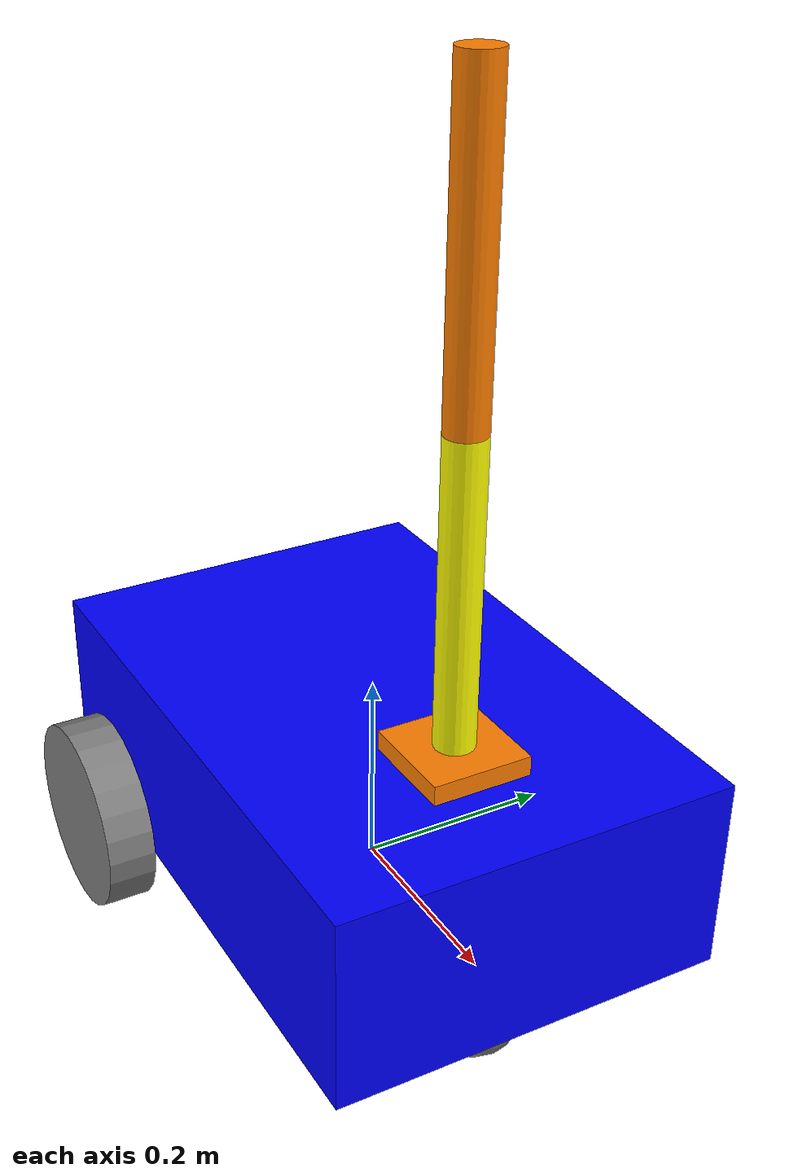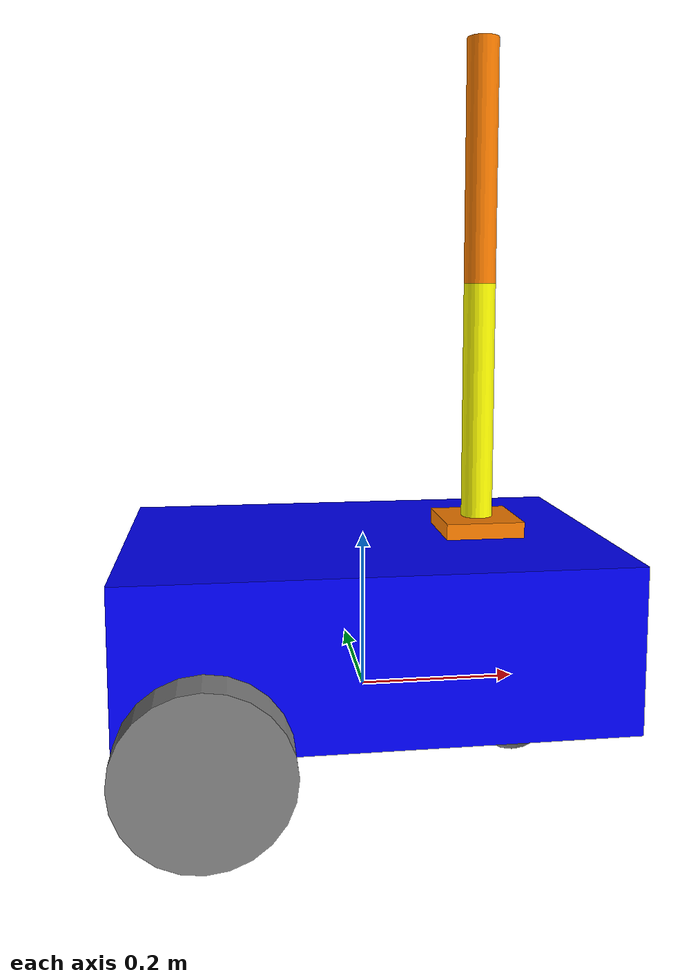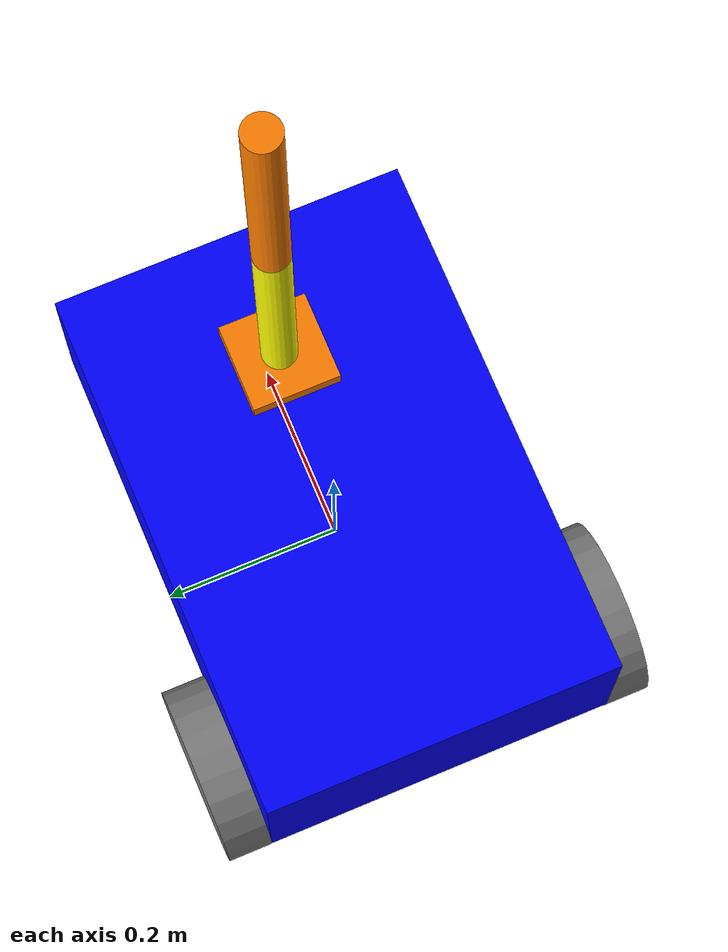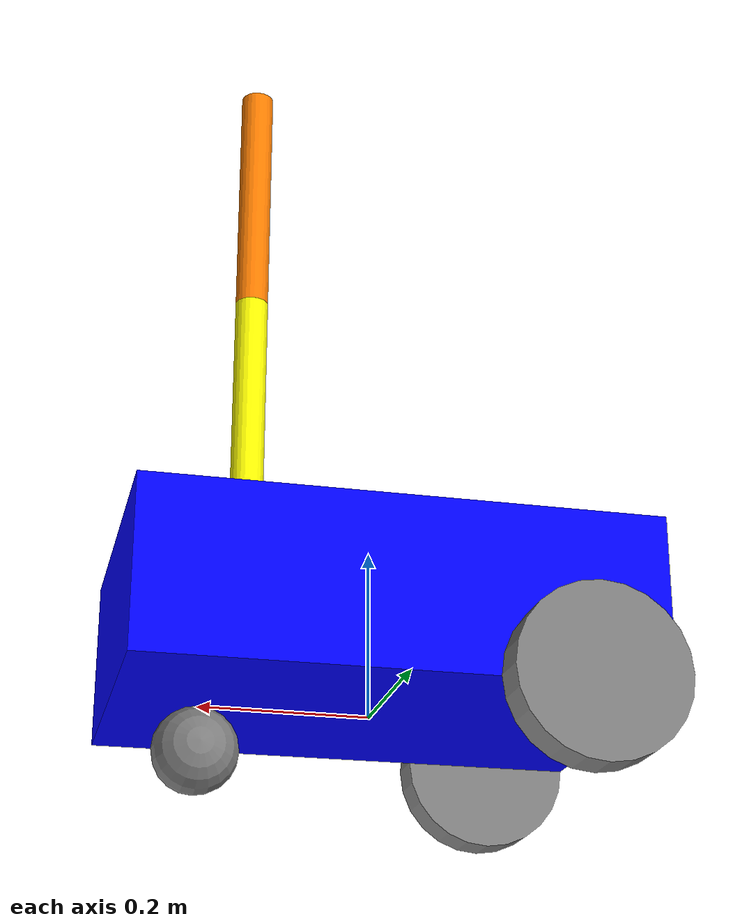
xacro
<?xml version="1.0"?>
<robot name="my_robot" xmlns:xacro="http://www.ros.org/wiki/xacro">

    <!-- is the main project file that includes other files -->

    <xacro:include filename="common_properties.xacro" />
    <xacro:include filename="mobile_base.xacro" />
    <xacro:include filename="mobile_base_ros2_control.xacro"/>
    <xacro:include filename="arm.xacro" />
    <xacro:include filename="arm_gazebo.xacro" />

    <joint name="mobile_base_arm_joint" type="fixed">
        <parent link="base_link" />
        <child link="arm_base_link" />
        <origin xyz="${base_length / 4.0} 0 ${base_height}" rpy="0 0 0" />
    </joint>

</robot>

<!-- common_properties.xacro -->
<!--we will not add name ot the robot since we will call this file inside main
xacro file -->

<robot xmlns:xacro = "http://www.ros.org/wiki/xacro">

    <material name= "blue">
        <color rgba= "0 0 1 1" />
    </material>

    <material name= "grey">
        <color rgba= "0.5 0.5 0.5 1" />
    </material>

    <material name= "orange">
        <color rgba= "1.0 0.5 0 1" />
    </material>

    <xacro:macro name= "box_inertia" params= "m l w h xyz rpy">
        <inertial>
            <origin xyz= "${xyz}" rpy= "${rpy}"/>
            <mass value= "${m}" />
            <inertia ixx="${(m/12) * (l*l + h*h)}" ixy="0" ixz="0"
                     iyy = "${(m/12) * (l*l + w*w)}" iyz="0"
                     izz="${(m/12) * (h*h + w*w)}" />
        </inertial>
    </xacro:macro>

    <xacro:macro name= "solid-cylinder_inertia" params= "m r h xyz rpy">
        <inertial>
            <origin xyz= "${xyz}" rpy= "${rpy}"/>
            <mass value= "${m}" />
            <inertia ixx="${(m/12) * (3*r*r + h*h)}" ixy="0" ixz="0"
                     iyy = "${(m/12) * (3*r*r + h*h)}" iyz="0"
                     izz="${(m/2) * (r*r)}" />
        </inertial>
    </xacro:macro>

    <xacro:macro name= "solid-sphere_inertia" params= "m r  xyz rpy">
        <inertial>
            <origin xyz= "${xyz}" rpy= "${rpy}"/>
            <mass value= "${m}" />
            <inertia ixx="${(2*m/5) * (r*r)}" ixy="0" ixz="0"
                     iyy = "${(2*m/5) * (r*r)}" iyz="0"
                     izz="${(2*m/5) * (r*r)}" />
        </inertial>
    </xacro:macro>

</robot>

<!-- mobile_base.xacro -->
<robot xmlns:xacro = "http://www.ros.org/wiki/xacro">

    <!-- making variables using "xacro:property" -->
    <xacro:property name="base_length" value="0.6" />
    <xacro:property name="base_width" value="0.4" />
    <xacro:property name="base_height" value="0.2" />
    <xacro:property name="wheel_radius" value="0.1" />
    <xacro:property name="wheel_length" value="0.05" />

    <link name="base_footprint"/>

    <link name="base_link">
      <visual>
        <geometry>
           <box size="${base_length} ${base_width} ${base_height}" />
        </geometry>
        <origin xyz="0 0 ${base_height/2.0}" rpy="0 0 0" />
        <material name="blue" />
      </visual>
      <collision>
        <geometry>
            <box size="${base_length} ${base_width} ${base_height}" />
        </geometry>
        <origin xyz="0 0 ${base_height/2.0}" rpy="0 0 0" />
      </collision>
      <xacro:box_inertia m="5.0" l="${2*base_length}" w="${2*base_width}"
      h="${2*base_height}" xyz="0 0 ${base_height/2.0}" rpy="0 0 0"/>
    </link>

    <joint name="base_footprint"  type="fixed">
        <parent link = "base_link" />
        <child link = "base_footprint" />
        <origin xyz="0 0 ${-base_height/2.0}" rpy="0 0 0" />
        <axis xyz="0 0 0" />
    </joint>

    <!-- making function for right and left wheels using "xacro:macro" -->
    <xacro:macro name = "wheel_link" params = "prefix" >

        <link name="${prefix}_wheel">
            <visual>
                <geometry>
                    <cylinder radius="${wheel_radius}" length="${wheel_length}" />
                </geometry>
                <origin xyz ="0 0 0" rpy="${pi/2.0} 0 0" />
                <material name="grey" />
            </visual>
            <collision>
                <geometry>
                    <cylinder radius="${wheel_radius}" length="${wheel_length}" />
                </geometry>
                <origin xyz ="0 0 0" rpy="${pi/2.0} 0 0" />
            </collision>
            <xacro:solid-cylinder_inertia m= "2.0" r= "${2*wheel_radius}"  h="${2*wheel_length}"
                         xyz="0 0 0" rpy="${pi/2.0} 0 0"/>
        </link>
    </xacro:macro>

    <!-- to make right wheel -->
    <xacro:wheel_link prefix = "right" />

    <!-- to make left wheel -->
    <xacro:wheel_link prefix = "left" />

    <joint name="base_right_wheel"  type="continuous">
        <parent link = "base_link" />
        <child link = "right_wheel" />
        <origin xyz="${-base_length/3.0} ${-base_width*0.5625} 0" rpy="0 0 0" />
        <axis xyz="0 1 0" />
    </joint>

    <joint name="base_left_wheel"  type="continuous">
        <parent link = "base_link" />
        <child link = "left_wheel" />
        <origin xyz="${-base_length/3.0} ${base_width*0.5625} 0" rpy="0 0 0" />
        <axis xyz="0 1 0" />
    </joint>

    <joint name="base_castor_wheel"  type="fixed">
        <parent link = "base_link" />
        <child link = "castor_wheel" />
        <origin xyz="${base_length/3.0} 0 ${-base_height/4.0}" rpy="0 0 0" />
    </joint>

    <link name="castor_wheel">
        <visual>
           <geometry>
               <sphere radius="${wheel_radius/2.0}" />
           </geometry>
           <origin xyz ="0 0 0" rpy="${pi/2.0} 0 0" />
           <material name="grey" />
        </visual>
        <collision>
            <geometry>
                <sphere radius="${wheel_radius/2.0}" />
            </geometry>
            <origin xyz ="0 0 0" rpy="${pi/2.0} 0 0" />
        </collision>
        <xacro:solid-sphere_inertia m= "1.0" r= "${2*wheel_radius/2.0}" xyz= "0 0 0" rpy= "${pi/2.0} 0 0"/>
    </link>

 <!-- when using reference to specific link everything written within that block
    will only effect that link -->

    <gazebo reference="base_link">
        <material>Gazebo/Blue</material>
    </gazebo>

    <gazebo reference="left_wheel">
        <material>Gazebo/Grey</material>
    </gazebo>

    <gazebo reference="right_wheel">
        <material>Gazebo/Grey</material>
    </gazebo>

    <gazebo reference="castor_wheel">
        <material>Gazebo/Grey</material>
        <mu1 value="0.1"/>
        <mu2 value="0.1"/>
    </gazebo>

</robot>

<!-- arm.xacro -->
<robot xmlns:xacro="http://www.ros.org/wiki/xacro">

    <xacro:property name="arm_base_length" value="0.1" />
    <xacro:property name="arm_base_width" value="0.1" />
    <xacro:property name="arm_base_height" value="0.02" />
    <xacro:property name="forearm_radius" value="0.02" />
    <xacro:property name="forearm_length" value="0.3" />
    <xacro:property name="hand_radius" value="0.02" />
    <xacro:property name="hand_length" value="0.3" />

    <link name="arm_base_link">
        <visual>
            <geometry>
                <box size="${arm_base_length} ${arm_base_width} ${arm_base_height}" />
            </geometry>
            <origin xyz="0 0 ${arm_base_height / 2.0}" rpy="0 0 0" />
            <material name= "orange">
                <color rgba= "1.0 0.5 0 1" />
            </material>
        </visual>
        <collision>
            <geometry>
                <box size="${arm_base_length} ${arm_base_width} ${arm_base_height}" />
            </geometry>
            <origin xyz="0 0 ${arm_base_height / 2.0}" rpy="0 0 0" />
        </collision>
        <inertial>
            <origin xyz= "0 0 ${arm_base_height / 2.0}" rpy= "0 0 0"/>
            <mass value= "0.5" />
            <inertia ixx="${(0.5/12) * (arm_base_length * arm_base_length + arm_base_height * arm_base_height)}" ixy="0" ixz="0"
                     iyy = "${(0.5/12) * (arm_base_length * arm_base_length + arm_base_width * arm_base_width)}" iyz="0"
                     izz="${(0.5/12) * (arm_base_height * arm_base_height + arm_base_width * arm_base_width)}" />
        </inertial>
    </link>

    <link name="forearm_link">
        <visual>
            <geometry>
                <cylinder radius="${forearm_radius}" length="${forearm_length}" />
            </geometry>
            <origin xyz="0 0 ${forearm_length / 2.0}" rpy="0 0 0" />
            <material name="yellow" >
                <color rgba= "1.0 1.0 0 1" />
            </material>
        </visual>
        <collision>
            <geometry>
                <cylinder radius="${forearm_radius}" length="${forearm_length}" />
            </geometry>
            <origin xyz="0 0 ${forearm_length / 2.0}" rpy="0 0 0" />
        </collision>
        <inertial>
            <origin xyz= "0 0 ${forearm_length / 2.0}" rpy= "0 0 0"/>
            <mass value= "0.3" />
            <inertia ixx="${(0.3/12) * (3 * forearm_radius * forearm_radius + forearm_length * forearm_length)}" ixy="0" ixz="0"
                     iyy = "${(0.3/12) * (3 * forearm_radius * forearm_radius + forearm_length * forearm_length)}" iyz="0"
                     izz="${(0.3/2) * (forearm_radius * forearm_radius)}" />
        </inertial>
    </link>

    <link name="hand_link">
        <visual>
            <geometry>
                <cylinder radius="${hand_radius}" length="${hand_length}" />
            </geometry>
            <origin xyz="0 0 ${hand_length / 2.0}" rpy="0 0 0" />
            <material name="orange" />
        </visual>
        <collision>
            <geometry>
                <cylinder radius="${hand_radius}" length="${hand_length}" />
            </geometry>
            <origin xyz="0 0 ${hand_length / 2.0}" rpy="0 0 0" />
        </collision>
        <inertial>
            <origin xyz= "0 0 ${hand_length / 2.0}" rpy= "0 0 0"/>
            <mass value= "0.3" />
            <inertia ixx="${(0.3/12) * (3 * hand_radius * hand_radius + hand_length * hand_length)}" ixy="0" ixz="0"
                     iyy = "${(0.3/12) * (3 * hand_radius * hand_radius + hand_length * hand_length)}" iyz="0"
                     izz="${(0.3/2) * (hand_radius * hand_radius)}" />
        </inertial>
    </link>

    <joint name="arm_base_forearm_joint" type="revolute">
        <parent link="arm_base_link" />
        <child link="forearm_link" />
        <origin xyz="0 0 ${arm_base_height}" rpy="0 0 0" />
        <axis xyz="0 1 0" />
        <limit lower="0" upper="${pi/2}" effort="100" velocity="100" />
        <dynamics friction="0.05" damping="0.1"/>
    </joint>

    <joint name="forearm_hand_joint" type="revolute">
        <parent link="forearm_link" />
        <child link="hand_link" />
        <origin xyz="0 0 ${forearm_length}" rpy="0 0 0" />
        <axis xyz="0 1 0" />
        <limit lower="0" upper="${pi/2}" effort="100" velocity="100" />
        <dynamics friction="0.05" damping="0.1"/>
    </joint>

    <gazebo reference="arm_base_link">
        <material>Gazebo/Orange</material>
    </gazebo>

    <gazebo reference="forearm_link">
        <material>Gazebo/Yellow</material>
    </gazebo>

    <gazebo reference="hand_link">
        <material>Gazebo/Orange</material>
    </gazebo>

</robot>
